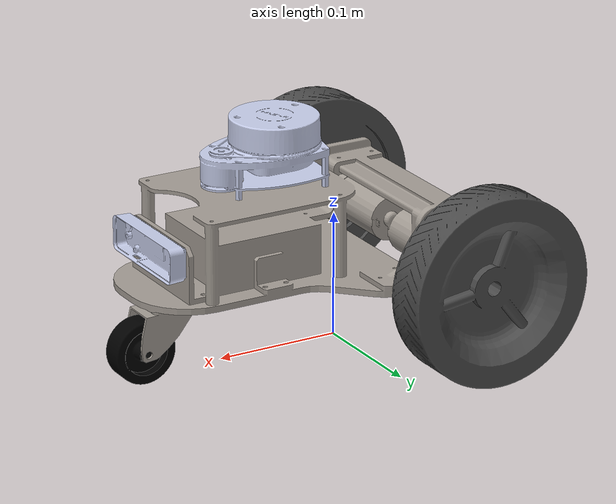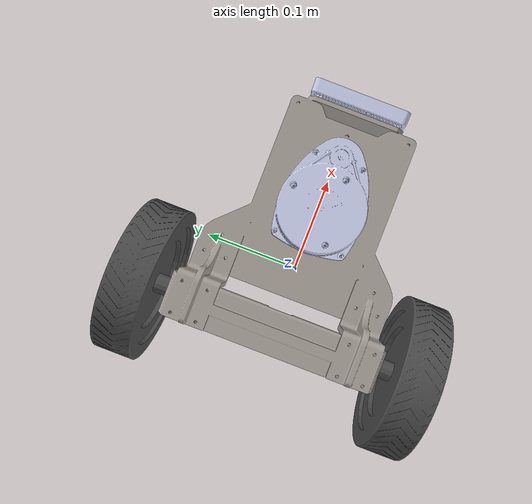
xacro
<?xml version="1.0"?>
<robot name="my_robot" xmlns:xacro="http://www.ros.org/wiki/xacro">

    <xacro:include filename="mobile_base.xacro" />
    <xacro:include filename="camera.xacro" />
    <xacro:include filename="imu.xacro" />
    <xacro:include filename="lidar.xacro" />
    <xacro:include filename="ign_gazebo.xacro" />

</robot>

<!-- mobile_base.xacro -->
<robot name="mobile_base" xmlns:xacro="http://www.ros.org/wiki/xacro">

    <link name="base_footprint" />

    <link name="base_link">
        <inertial>
            <origin
                xyz="0 0 0"
                rpy="0 0 0" />
            <mass
                value="3.05013833627546" />
            <inertia
                ixx="0.00282873573184269"
                ixy="-1.34642108977171E-07"
                ixz="3.62264183974517E-05"
                iyy="0.00241125343004195"
                iyz="3.17541336190539E-09"
                izz="0.00466072890852247" />
        </inertial>
        <visual>
            <origin
                xyz="0 0 0"
                rpy="0 0 0" />
            <geometry>
                <mesh
                filename="package://krobot_amr_description/meshes/base_link.STL" />
            </geometry>
            <material
                name="">
                <color
                rgba="0.647058823529412 0.619607843137255 0.588235294117647 1" />
            </material>
        </visual>
        <collision>
            <origin
                xyz="0 0 0"
                rpy="0 0 0" />
            <geometry>
                <mesh
                filename="package://krobot_amr_description/meshes/base_link.STL" />
            </geometry>
        </collision>
    </link>

    <joint name="base_joint" type="fixed">
        <parent link="base_footprint" />
        <child link="base_link" />
        <origin xyz="0 0 0.085" rpy="0 0 0"/>
    </joint>

    <link
    name="left_wheel">
        <inertial>
            <origin
                xyz="0 0 0"
                rpy="0 0 0" />
            <mass
                value="0.546060060071944" />
            <inertia
                ixx="0.00100429594588788"
                ixy="1.17828555717233E-07"
                ixz="-2.11659705830806E-09"
                iyy="0.00190734224449798"
                iyz="-8.93928077455667E-08"
                izz="0.00100429480035459" />
        </inertial>
        <visual>
            <origin
                xyz="0 0 0"
                rpy="0 0 0" />
            <geometry>
                <mesh
                filename="package://krobot_amr_description/meshes/left_wheel.STL" />
            </geometry>
            <material
                name="">
                <color
                rgba="0.298039215686275 0.298039215686275 0.298039215686275 1" />
            </material>
        </visual>
        <collision>
            <origin
                xyz="0 0 0"
                rpy="0 0 0" />
            <geometry>
                <mesh
                filename="package://krobot_amr_description/meshes/left_wheel.STL" />
            </geometry>
            <surface>
                <friction>
                    <ode>
                        <mu>0.9</mu>
                        <mu2>0.9</mu2>
                    </ode>
                </friction>
            </surface>
        </collision>
    </link>

    <joint
        name="base_left_wheel"
        type="continuous">
        <origin
        xyz="-0.059227 0.12918 -0.012612"
        rpy="0 0 0" />
        <parent
        link="base_link" />
        <child
        link="left_wheel" />
        <axis
        xyz="0 1 0" />
    </joint>

    <link
    name="right_wheel">
        <inertial>
            <origin
                xyz="0 0 0"
                rpy="0 0 0" />
            <mass
                value="0.546060060071944" />
            <inertia
                ixx="0.0010042948817914"
                ixy="-9.16319059622406E-08"
                ixz="-2.13696975270597E-09"
                iyy="0.00190734224449798"
                iyz="1.16095807112114E-07"
                izz="0.00100429586445108" />
        </inertial>
        <visual>
            <origin
                xyz="0 0 0"
                rpy="0 0 0" />
            <geometry>
                <mesh
                filename="package://krobot_amr_description/meshes/right_wheel.STL" />
            </geometry>
            <material
                name="">
                <color
                rgba="0.298039215686275 0.298039215686275 0.298039215686275 1" />
            </material>
        </visual>
        <collision>
            <origin
                xyz="0 0 0"
                rpy="0 0 0" />
            <geometry>
                <mesh
                filename="package://krobot_amr_description/meshes/right_wheel.STL" />
            </geometry>
            <surface>
                <friction>
                    <ode>
                        <mu>0.9</mu>
                        <mu2>0.9</mu2>
                    </ode>
                </friction>
            </surface>
        </collision>
    </link>
    <joint
        name="base_right_wheel"
        type="continuous">
        <origin
        xyz="-0.059232 -0.12918 -0.012617"
        rpy="0 0 0" />
        <parent
        link="base_link" />
        <child
        link="right_wheel" />
        <axis
        xyz="0 1 0" />
    </joint>

    <link
    name="caster">
        <inertial>
            <origin
                xyz="0 0 0"
                rpy="0 0 0" />
            <mass
                value="0.117454061907181" />
            <inertia
                ixx="2.84085593987581E-05"
                ixy="1.35010445332139E-07"
                ixz="6.7322693299636E-06"
                iyy="3.15485424415511E-05"
                iyz="-2.85056167574158E-07"
                izz="3.33738274419381E-05" />
            </inertial>
        <visual>
            <origin
                xyz="0 0 0"
                rpy="0 0 0" />
            <geometry>
                <mesh
                filename="package://krobot_amr_description/meshes/caster.STL" />
            </geometry>
            <material
                name="">
                <color
                rgba="0.647058823529412 0.619607843137255 0.588235294117647 1" />
            </material>
        </visual>
        <collision>
            <origin
                xyz="0 0 0"
                rpy="0 0 0" />
            <geometry>
                <mesh
                filename="package://krobot_amr_description/meshes/caster.STL" />
            </geometry>

        </collision>
    </link>
    <joint
        name="base_caster"
        type="continuous">
        <origin
        xyz="0.1481 -0.00012115 -0.031621"
        rpy="0 0 0" />
        <parent
        link="base_link" />
        <child
        link="caster" />
        <axis
        xyz="0 0 -1" />
    </joint>
    <link
        name="caster_wheel">
        <inertial>
            <origin
                xyz="0 0 0"
                rpy="0 0 0" />
            <mass
                value="0.0267501738812479" />
            <inertia
                ixx="5.65844186423342E-06"
                ixy="-1.44278691817399E-21"
                ixz="-5.62772440327498E-22"
                iyy="9.87141726802175E-06"
                iyz="6.72959251701015E-22"
                izz="5.65844186423342E-06" />
        </inertial>
        <visual>
            <origin
                xyz="0 0 0"
                rpy="0 0 0" />
            <geometry>
                <mesh
                filename="package://krobot_amr_description/meshes/caster_wheel.STL" />
            </geometry>
            <material
                name="">
                <color
                rgba="0 0 0 1" />
            </material>
        </visual>
        <collision>
            <origin
                xyz="0 0 0"
                rpy="0 0 0" />
            <geometry>
                <mesh
                filename="package://krobot_amr_description/meshes/caster_wheel.STL" />
            </geometry>
            <surface>
                <friction>
                    <ode>
                        <mu>0.9</mu>
                        <mu2>0.9</mu2>
                    </ode>
                </friction>
            </surface>
        </collision>
    </link>
    <joint
        name="caster_caster_wheel"
        type="continuous">
        <origin
        xyz="0.020268 -0.00033344 -0.030926"
        rpy="0 0 0" />
        <parent
        link="caster" />
        <child
        link="caster_wheel" />
        <axis
        xyz="0 1 0" />
    </joint>

</robot>

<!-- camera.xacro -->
<robot xmlns:xacro="http://www.ros.org/wiki/xacro">

    <link
    name="camera">
        <inertial>
            <origin
                xyz="0 0 0"
                rpy="0 0 0" />
            <mass
                value="0.0124907958046173" />
            <inertia
                ixx="9.93348703178339E-06"
                ixy="7.2415518219099E-09"
                ixz="-3.96859308561871E-09"
                iyy="1.13565433835609E-06"
                iyz="1.55628646919018E-08"
                izz="9.1237412087394E-06" />
        </inertial>
        <visual>
            <origin
                xyz="0 0 0"
                rpy="0 0 0" />
            <geometry>
                <mesh
                filename="package://krobot_amr_description/meshes/camera.STL" />
            </geometry>
            <material
                name="">
                <color
                rgba="0.792156862745098 0.819607843137255 0.933333333333333 1" />
            </material>
        </visual>
        <collision>
            <origin
                xyz="0 0 0"
                rpy="0 0 0" />
            <geometry>
                <mesh
                filename="package://krobot_amr_description/meshes/camera.STL" />
            </geometry>
        </collision>
    </link>

    <joint
        name="base_camera"
        type="fixed">
        <origin
        xyz="0.15997 0.00019275 0.017869"
        rpy="0 0 0" />
        <parent
        link="base_link" />
        <child
        link="camera" />
        <axis
        xyz="0 0 0" />
    </joint>

    <link name = "left_camera"/>
    <link name = "right_camera"/>
    <link name = "rgb_camera"/>
    <link name = "depth_camera"/>

    <joint
        name="camera_left_camera"
        type="fixed">
        <origin
        xyz="0 0.0375 0"
        rpy="-1.57079632679 0.0 -1.57079632679" />
        <parent
        link="camera" />
        <child
        link="left_camera" />
        <axis
        xyz="0 0 0" />
    </joint>

    <joint
        name="camera_right_camera"
        type="fixed">
        <origin
        xyz="0 -0.0375 0"
        rpy="-1.57079632679 0.0 -1.57079632679" />
        <parent
        link="camera" />
        <child
        link="right_camera" />
        <axis
        xyz="0 0 0" />
    </joint>

    <joint
        name="camera_rgb_camera"
        type="fixed">
        <origin
        xyz="0 0 0"
        rpy="0 0.0 0" />
        <parent
        link="camera" />
        <child
        link="rgb_camera" />
        <axis
        xyz="0 0 0" />
    </joint>

    <joint
        name="camera_depth_camera"
        type="fixed">
        <origin
        xyz="0 0 0"
        rpy="0 0.0 0" />
        <parent
        link="camera" />
        <child
        link="depth_camera" />
        <axis
        xyz="0 0 0" />
    </joint>

</robot>

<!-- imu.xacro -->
<robot xmlns:xacro="http://www.ros.org/wiki/xacro">

    <link
    name="imu">
    </link>
    <joint
        name="base_imu"
        type="fixed">
        <origin
        xyz="0 0 0"
        rpy="0 0 0" />
        <parent
        link="base_link" />
        <child
        link="imu" />
        <axis
        xyz="0 0 0" />
    </joint>

</robot>

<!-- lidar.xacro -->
<robot xmlns:xacro="http://www.ros.org/wiki/xacro">

    <link
    name="lidar">
        <inertial>
            <origin
                xyz="0 0 0"
                rpy="0 0 0" />
            <mass
                value="0.0731251643731806" />
            <inertia
                ixx="1.95815794551267E-05"
                ixy="-1.04017030830761E-07"
                ixz="-4.2763497444236E-07"
                iyy="2.4131591923912E-05"
                iyz="9.38002067110816E-09"
                izz="4.14254792502033E-05" />
        </inertial>
        <visual>
            <origin
                xyz="0 0 0"
                rpy="0 0 0" />
            <geometry>
                <mesh
                filename="package://krobot_amr_description/meshes/lidar.STL" />
            </geometry>
            <material
                name="">
                <color
                rgba="0.792156862745098 0.819607843137255 0.933333333333333 1" />
            </material>
        </visual>
        <collision>
            <origin
                xyz="0 0 0"
                rpy="0 0 0" />
            <geometry>
                <mesh
                filename="package://krobot_amr_description/meshes/lidar.STL" />
            </geometry>
        </collision>
    </link>
    <joint
        name="base_lidar"
        type="fixed">
        <origin
        xyz="0.064292 -0.00044905 0.07548"
        rpy="0 0 0" />
        <parent
        link="base_link" />
        <child
        link="lidar" />
        <axis
        xyz="0 0 0" />
    </joint>

</robot>
